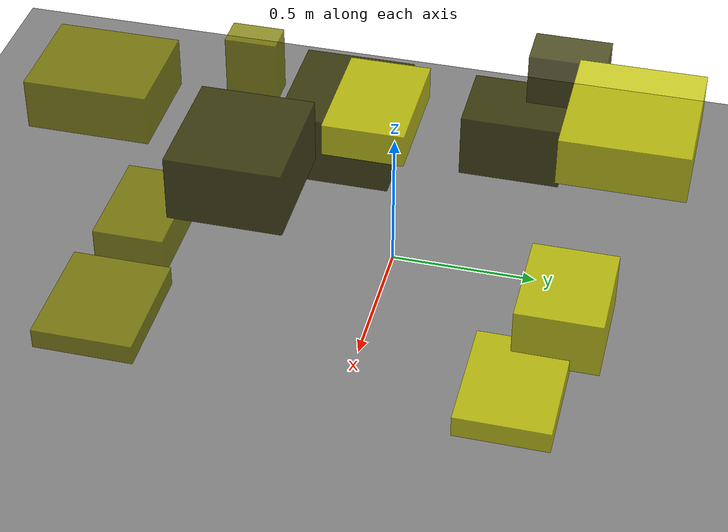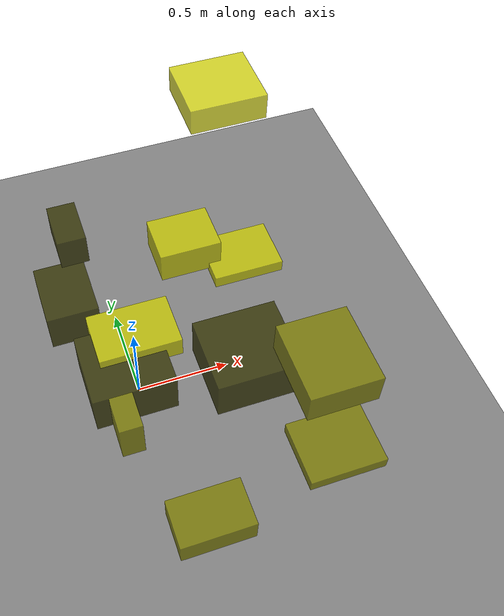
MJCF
<?xml version="1.0"?>
<mujoco model="obstacle_scene">
  <compiler angle="radian" coordinate="local"/>
  <option timestep="0.001" gravity="0 0 -9.81"/>

  <asset>
    <material name="obstacle_mat" rgba="0.8 0.8 0.0 0.8"/>
    <material name="ground_mat" rgba="0.5 0.5 0.5 1"/>
  </asset>

  <worldbody>
    <!-- Ground plane -->
    <geom name="ground" type="plane" size="3 3 0.1" material="ground_mat"/>

    <!-- Obstacles -->
    <body name="obstacle_0" pos="-0.254591 0.368429 0.429366">
      <geom name="obs_0" type="box" size="0.131951 0.170261 0.112296" rgba="0.2 0.2 0.0 0.8"/>
    </body>
    <body name="obstacle_1" pos="0.780688 -0.763448 0.274693">
      <geom name="obs_1" type="box" size="0.195632 0.163905 0.034542" rgba="0.5 0.5 0.0 0.8"/>
    </body>
    <body name="obstacle_2" pos="0.777639 0.553799 0.212329">
      <geom name="obs_2" type="box" size="0.199714 0.151983 0.037216" rgba="0.8 0.8 0.0 0.8"/>
    </body>
    <body name="obstacle_3" pos="-0.173196 0.539371 0.748778">
      <geom name="obs_3" type="box" size="0.071225 0.124878 0.088692" rgba="0.2 0.2 0.0 0.8"/>
    </body>
    <body name="obstacle_4" pos="-0.167284 -0.524693 0.618702">
      <geom name="obs_4" type="box" size="0.053468 0.087875 0.113069" rgba="0.5 0.5 0.0 0.8"/>
    </body>
    <body name="obstacle_5" pos="-0.006459 -0.063316 0.609528">
      <geom name="obs_5" type="box" size="0.201507 0.136163 0.057227" rgba="0.8 0.8 0.0 0.8"/>
    </body>
    <body name="obstacle_6" pos="-0.087776 -0.184272 0.497036">
      <geom name="obs_6" type="box" size="0.201465 0.186335 0.120533" rgba="0.2 0.2 0.0 0.8"/>
    </body>
    <body name="obstacle_7" pos="0.648706 -0.740362 1.046635">
      <geom name="obs_7" type="box" size="0.157881 0.184402 0.079057" rgba="0.5 0.5 0.0 0.8"/>
    </body>
    <body name="obstacle_8" pos="0.717050 0.821979 1.199264">
      <geom name="obs_8" type="box" size="0.197126 0.177503 0.070987" rgba="0.8 0.8 0.0 0.8"/>
    </body>
    <body name="obstacle_9" pos="0.443137 -0.392077 0.677272">
      <geom name="obs_9" type="box" size="0.201546 0.185371 0.111440" rgba="0.2 0.2 0.0 0.8"/>
    </body>
    <body name="obstacle_10" pos="0.116370 -0.853982 0.093464">
      <geom name="obs_10" type="box" size="0.191867 0.124502 0.074217" rgba="0.5 0.5 0.0 0.8"/>
    </body>
    <body name="obstacle_11" pos="0.471834 0.660892 0.306118">
      <geom name="obs_11" type="box" size="0.174254 0.140001 0.097941" rgba="0.8 0.8 0.0 0.8"/>
    </body>
  </worldbody>
</mujoco>
